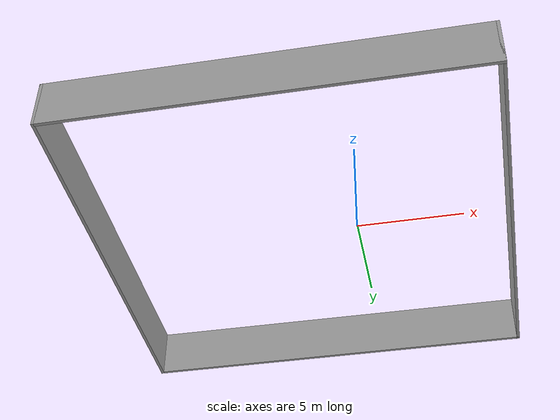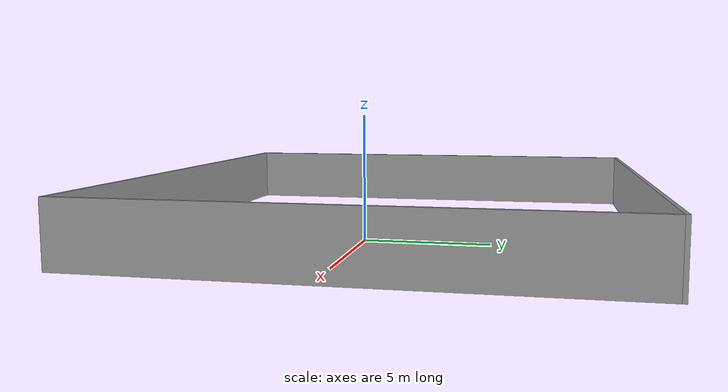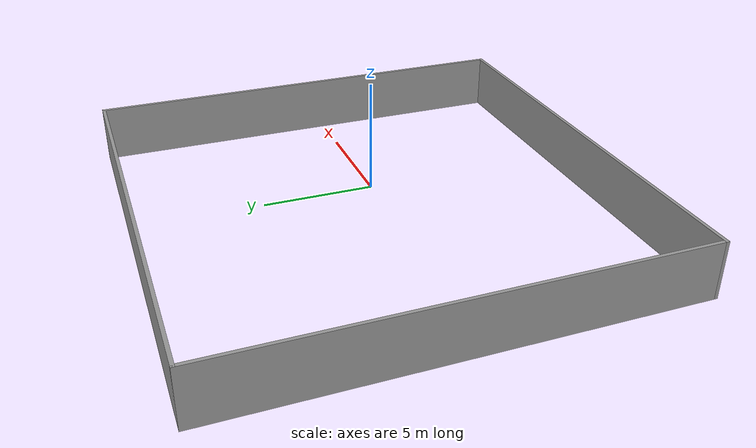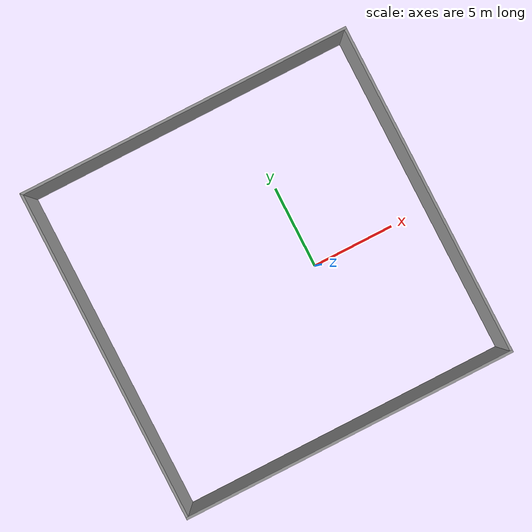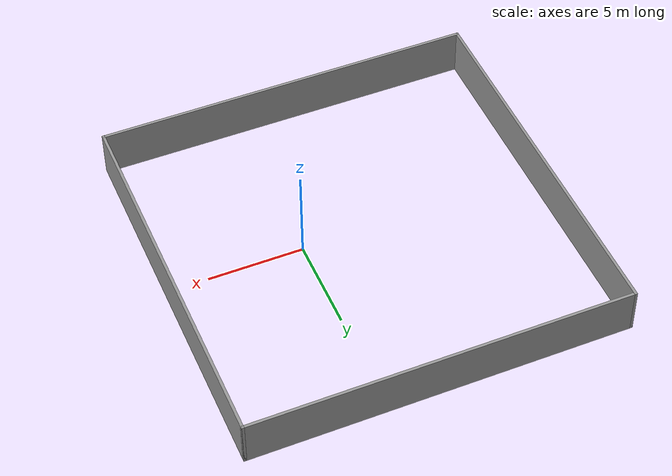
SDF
<?xml version='1.0'?>
<sdf version='1.7'>
  <model name='boundary_20by20'>
    <pose>-2.707 0.912 0 0 -0 0</pose>
    <link name='Wall_11'>
      <collision name='Wall_11_Collision'>
        <geometry>
          <box>
            <size>20 0.15 2.5</size>
          </box>
        </geometry>
        <pose>0 0 1.25 0 -0 0</pose>
      </collision>
      <visual name='Wall_11_Visual'>
        <pose>0 0 1.25 0 -0 0</pose>
        <geometry>
          <box>
            <size>20 0.15 2.5</size>
          </box>
        </geometry>
        <material>
          <script>
            <uri>file://media/materials/scripts/gazebo.material</uri>
            <name>Gazebo/Grey</name>
          </script>
          <ambient>0 0 0 1</ambient>
        </material>
        <meta>
          <layer>0</layer>
        </meta>
      </visual>
      <pose>-9.925 0 0 0 -0 1.5708</pose>
    </link>
    <link name='Wall_13'>
      <collision name='Wall_13_Collision'>
        <geometry>
          <box>
            <size>20 0.15 2.5</size>
          </box>
        </geometry>
        <pose>0 0 1.25 0 -0 0</pose>
      </collision>
      <visual name='Wall_13_Visual'>
        <pose>0 0 1.25 0 -0 0</pose>
        <geometry>
          <box>
            <size>20 0.15 2.5</size>
          </box>
        </geometry>
        <material>
          <script>
            <uri>file://media/materials/scripts/gazebo.material</uri>
            <name>Gazebo/Grey</name>
          </script>
          <ambient>0 0 0 1</ambient>
        </material>
        <meta>
          <layer>0</layer>
        </meta>
      </visual>
      <pose>-0 9.925 0 0 -0 0</pose>
    </link>
    <link name='Wall_5'>
      <collision name='Wall_5_Collision'>
        <geometry>
          <box>
            <size>20 0.15 2.5</size>
          </box>
        </geometry>
        <pose>0 0 1.25 0 -0 0</pose>
      </collision>
      <visual name='Wall_5_Visual'>
        <pose>0 0 1.25 0 -0 0</pose>
        <geometry>
          <box>
            <size>20 0.15 2.5</size>
          </box>
        </geometry>
        <material>
          <script>
            <uri>file://media/materials/scripts/gazebo.material</uri>
            <name>Gazebo/Grey</name>
          </script>
          <ambient>0 0 0 1</ambient>
        </material>
        <meta>
          <layer>0</layer>
        </meta>
      </visual>
      <pose>-0 -9.925 0 0 -0 0</pose>
    </link>
    <link name='Wall_9'>
      <collision name='Wall_9_Collision'>
        <geometry>
          <box>
            <size>20 0.15 2.5</size>
          </box>
        </geometry>
        <pose>0 0 1.25 0 -0 0</pose>
      </collision>
      <visual name='Wall_9_Visual'>
        <pose>0 0 1.25 0 -0 0</pose>
        <geometry>
          <box>
            <size>20 0.15 2.5</size>
          </box>
        </geometry>
        <material>
          <script>
            <uri>file://media/materials/scripts/gazebo.material</uri>
            <name>Gazebo/Grey</name>
          </script>
          <ambient>1 1 1 1</ambient>
        </material>
        <meta>
          <layer>0</layer>
        </meta>
      </visual>
      <pose>9.925 0 0 0 -0 1.5708</pose>
    </link>
    <static>1</static>
  </model>
</sdf>
